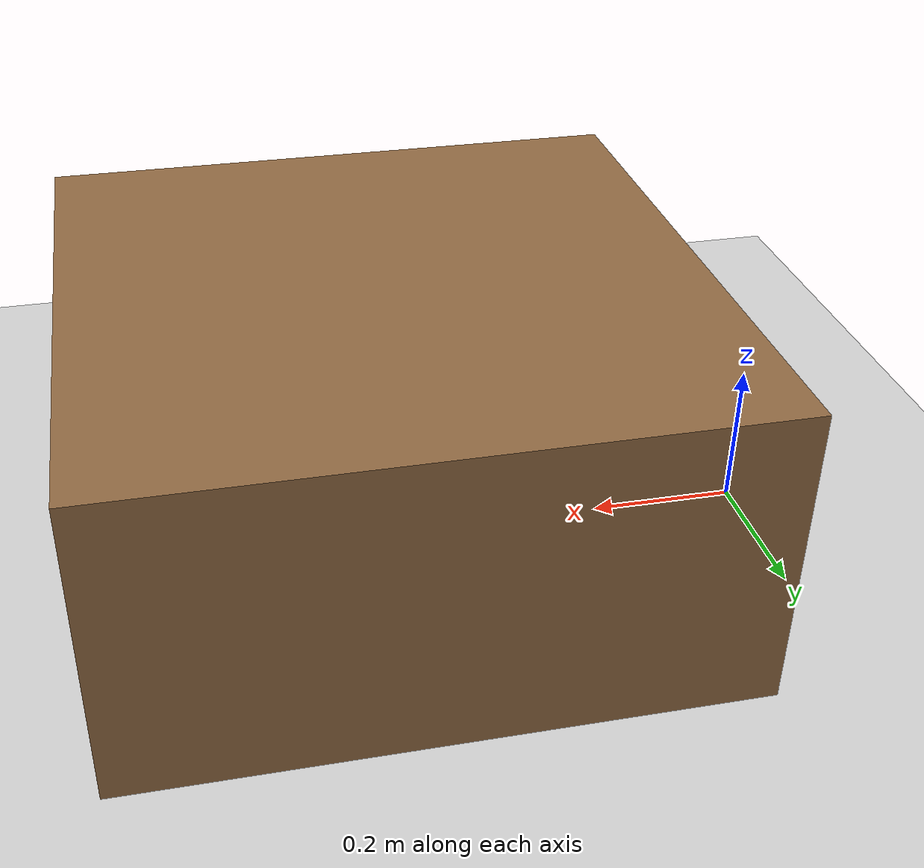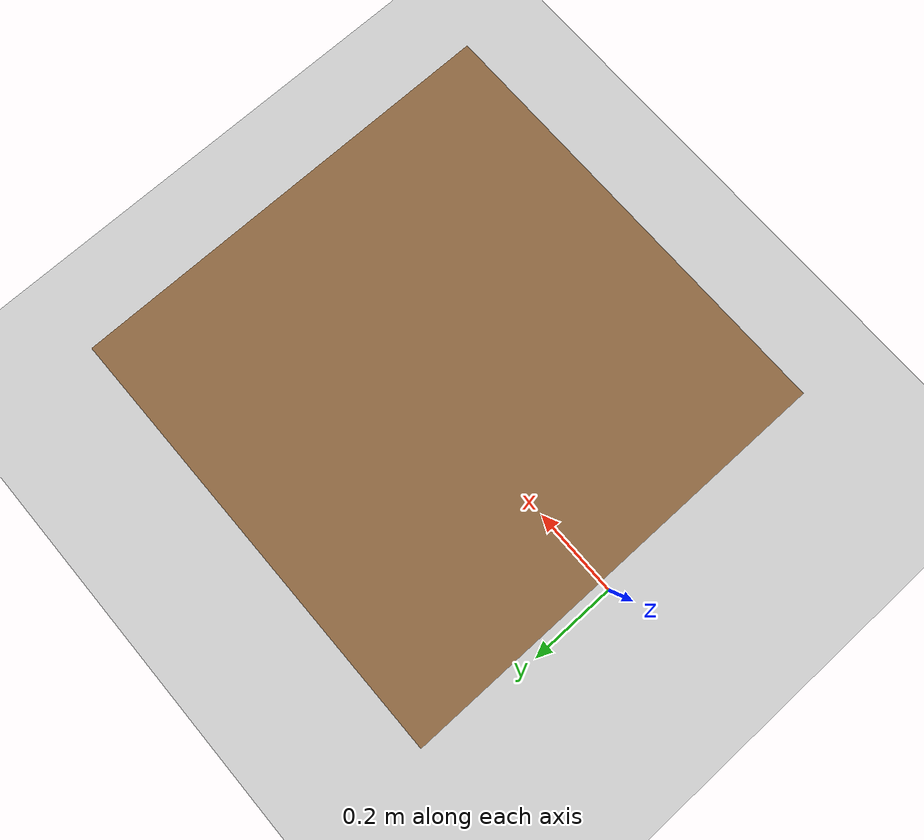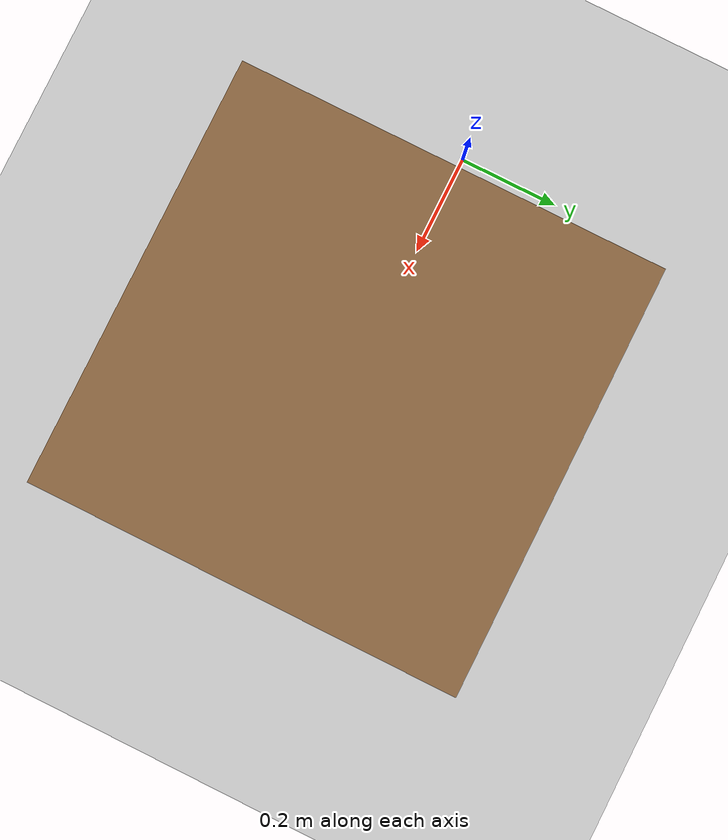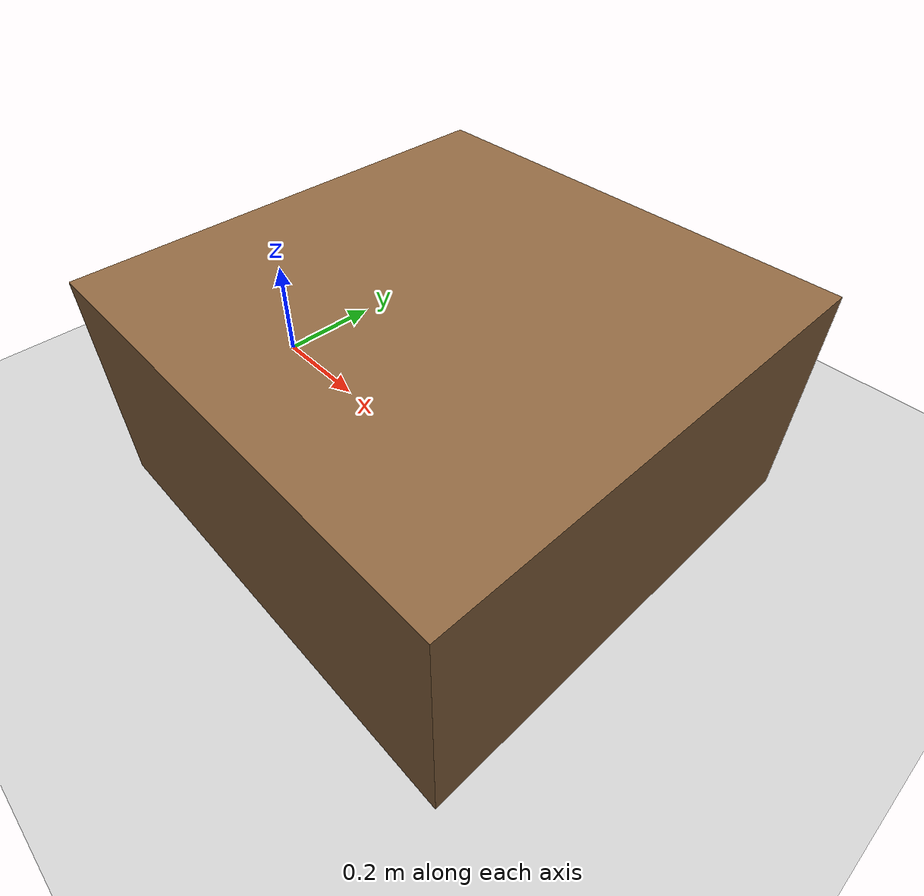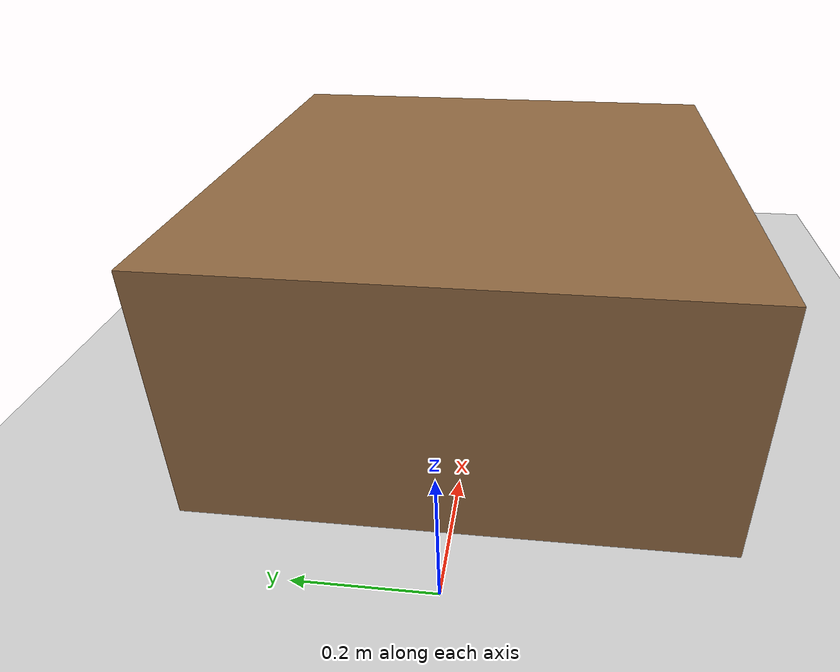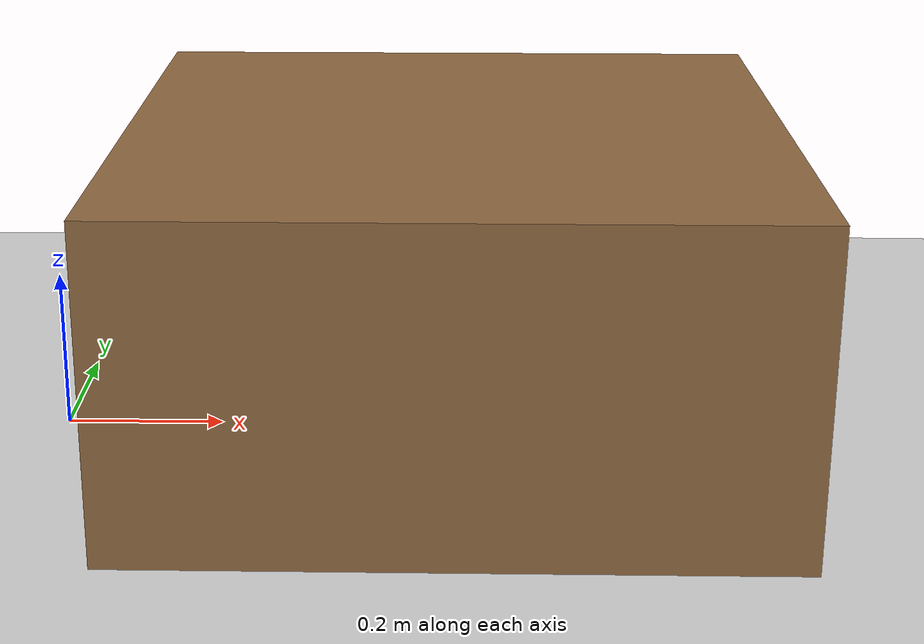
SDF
<?xml version="1.0"?>
<sdf version="1.10">
  <world name="panda_eval_world">

    <gravity>0 0 -9.81</gravity>

    <plugin filename="gz-sim-physics-system"  name="gz::sim::systems::Physics"/>
    <plugin filename="gz-sim-user-commands-system" name="gz::sim::systems::UserCommands"/>
    <plugin filename="gz-sim-scene-broadcaster-system" name="gz::sim::systems::SceneBroadcaster"/>
    <plugin filename="gz-sim-sensors-system"  name="gz::sim::systems::Sensors"/>

    <light type="directional" name="sun">
      <cast_shadows>false</cast_shadows>
      <diffuse>1 1 1 1</diffuse>
      <direction>-0.5 0.1 -0.9</direction>
    </light>

    <model name="ground_plane">
      <static>true</static>
      <link name="ground_link">
        <collision name="collision">
          <geometry><plane><normal>0 0 1</normal><size>10 10</size></plane></geometry>
        </collision>
        <visual name="visual">
          <geometry><plane><normal>0 0 1</normal><size>10 10</size></plane></geometry>
          <material><diffuse>0.8 0.8 0.8 1</diffuse></material>
        </visual>
      </link>
    </model>

    <model name="table">
      <static>true</static>
      <pose>0.5 0 0.2 0 0 0</pose>
      <link name="table_link">
        <collision name="collision">
          <geometry><box><size>0.8 0.8 0.4</size></box></geometry>
          <surface><friction><ode><mu>1.0</mu><mu2>1.0</mu2></ode></friction></surface>
        </collision>
        <visual name="visual">
          <geometry><box><size>0.8 0.8 0.4</size></box></geometry>
          <material><diffuse>0.55 0.4 0.25 1</diffuse></material>
        </visual>
      </link>
    </model>

  </world>
</sdf>
